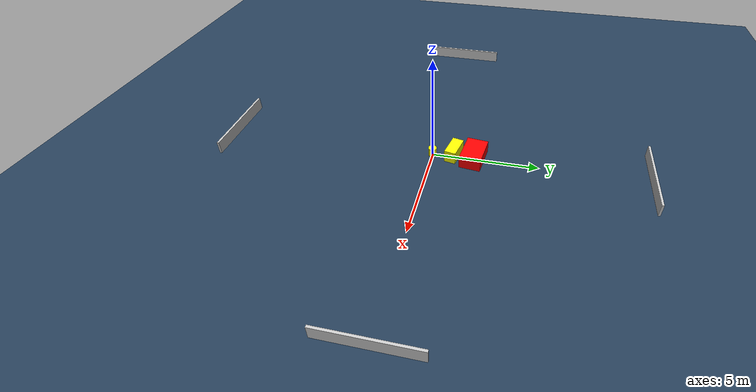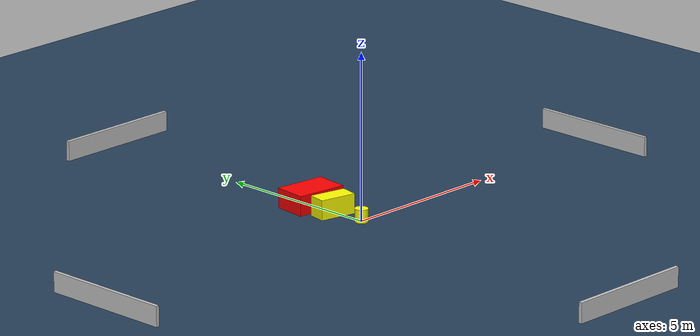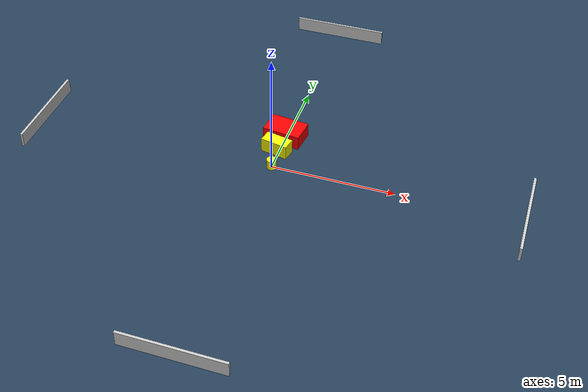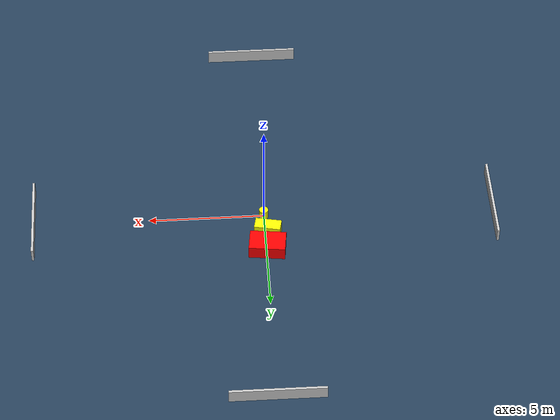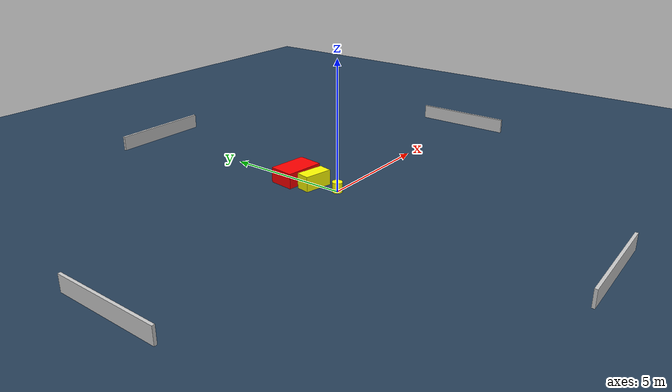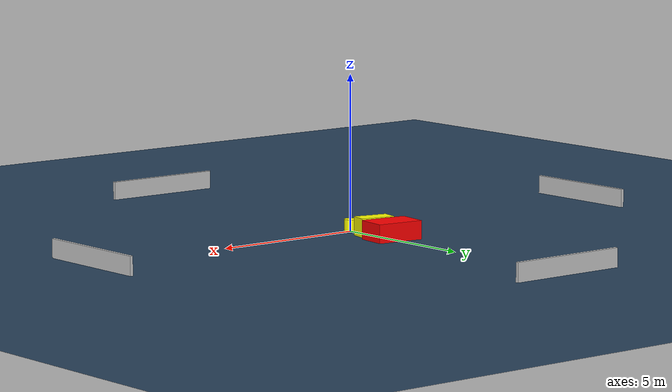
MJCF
<?xml version="1.0" ?>
<mujoco model="generated_environment">
  <option timestep="0.01" integrator="RK4" cone="elliptic"/>
  <default>
    <geom density="1"/>
  </default>
  <asset>
    <texture builtin="gradient" height="3072" name="skybox" rgb1="0.3 0.5 0.7" rgb2="0 0 0" type="skybox" width="512"/>
    <texture builtin="checker" height="300" name="groundplane" rgb1="0.2 0.3 0.4" rgb2="0.1 0.2 0.3" type="2d" width="300"/>
    <material name="groundplane" reflectance="0.2" texrepeat="5 5" texture="groundplane"/>
  </asset>
  <worldbody>
    <light dir="0 0 -1" directional="true" pos="0 0 1.5"/>
    <geom condim="3" friction="0.5 0.005 0.001" material="groundplane" name="floor" pos="0 0 0" size="0 0 0.05" type="plane"/>
    <body name="walls">
      <geom name="wall_1" condim="4" pos="-10.0 0.0 0.3" rgba="0.800000011920929 0.800000011920929 0.800000011920929 1.0" size="0.05 2.0 0.3" type="box"/>
      <geom name="wall_2" condim="4" pos="10.0 0.0 0.3" rgba="0.800000011920929 0.800000011920929 0.800000011920929 1.0" size="0.05 2.0 0.3" type="box"/>
      <geom name="wall_3" condim="4" pos="0.0 -10.0 0.3" rgba="0.800000011920929 0.800000011920929 0.800000011920929 1.0" size="2.0 0.05 0.3" type="box"/>
      <geom name="wall_4" condim="4" pos="0.0 10.0 0.3" rgba="0.800000011920929 0.800000011920929 0.800000011920929 1.0" size="2.0 0.05 0.3" type="box"/>
    </body>
    <body name="robot">
      <joint name="joint_x" type="slide" pos="0 0 0" axis="1 0 0"/>
      <joint name="joint_y" type="slide" pos="0 0 0" axis="0 1 0"/>
      <geom name="robot" type="cylinder" pos="0.0 0.0 0.2" size="0.2 0.2 0.0" mass="5.0" friction="1.0 0.005 0.0001" condim="4" rgba="1.0 1.0 0.0 1.0"/>
    </body>
    <body name="obstacle_1_movable">
      <geom name="obstacle_1_movable" condim="4" pos="-0.12143699889112514 1.011758783246799 0.3" euler="0 0 258.31077053674096" friction="0.0 0.005 0.001" rgba="1.0 1.0 0.0 1.0" size="0.2723754582671914 0.564010500408423 0.3" type="box" mass="0.1"/>
      <joint type="free"/>
    </body>
    <body name="obstacle_2_static">
      <geom name="obstacle_2_static" condim="4" pos="-0.05072228014825907 1.9590471818543314 0.3" euler="0 0 353.1731299836159" friction="0.0 0.005 0.001" rgba="1.0 0.0 0.0 1.0" size="0.7797244674922847 0.5048329114671375 0.3" type="box"/>
    </body>
  </worldbody>
  <actuator>
    <motor name="actuator_x" joint="joint_x" gear="1" ctrlrange="-1 1"/>
    <motor name="actuator_y" joint="joint_y" gear="1" ctrlrange="-1 1"/>
  </actuator>
</mujoco>
